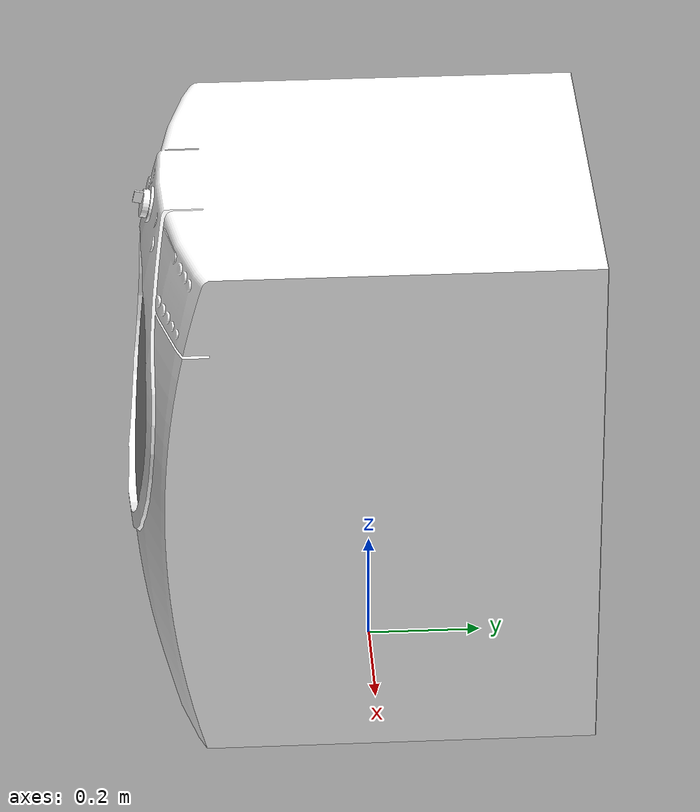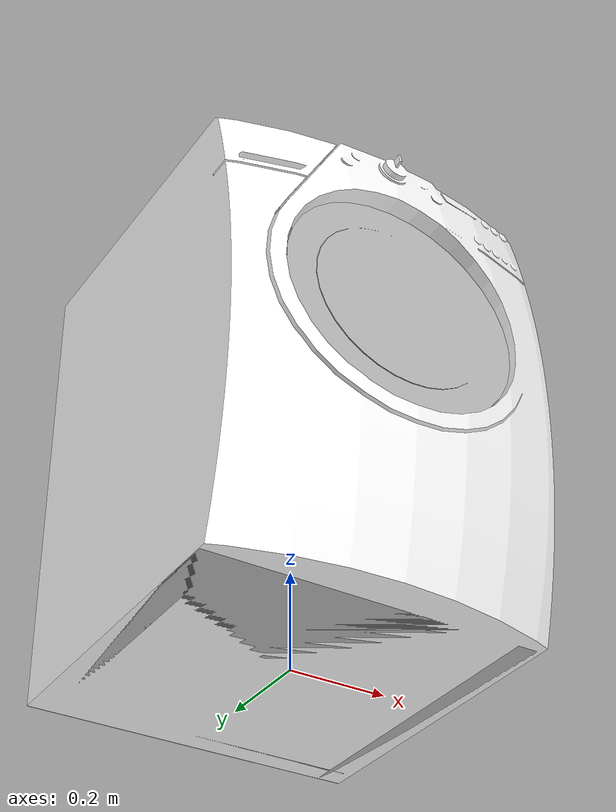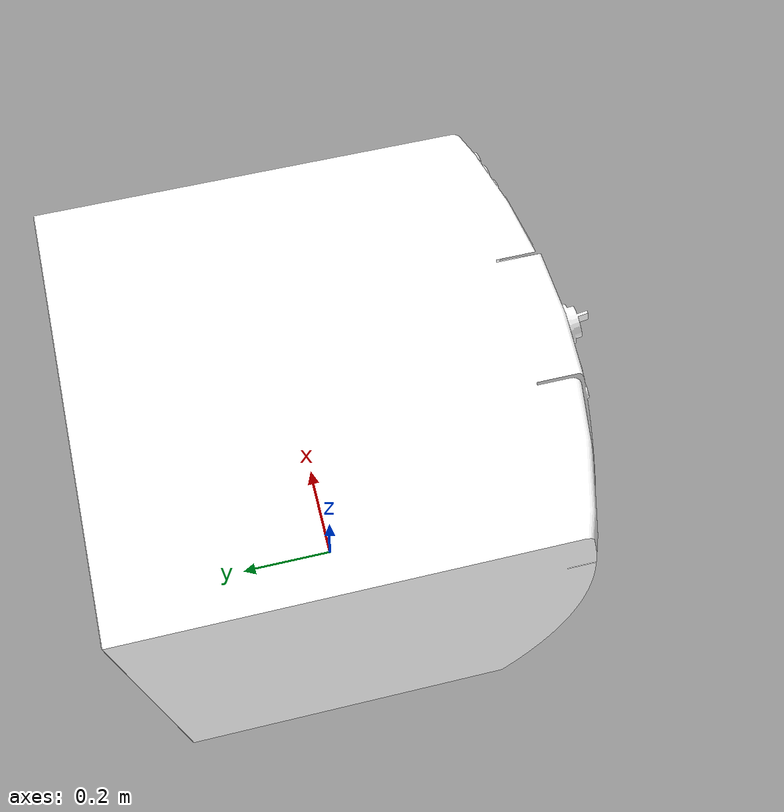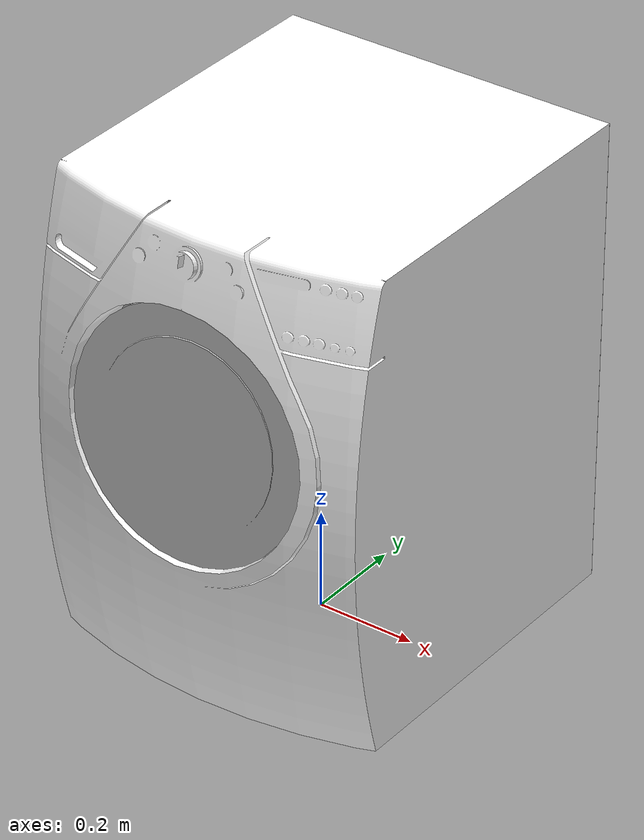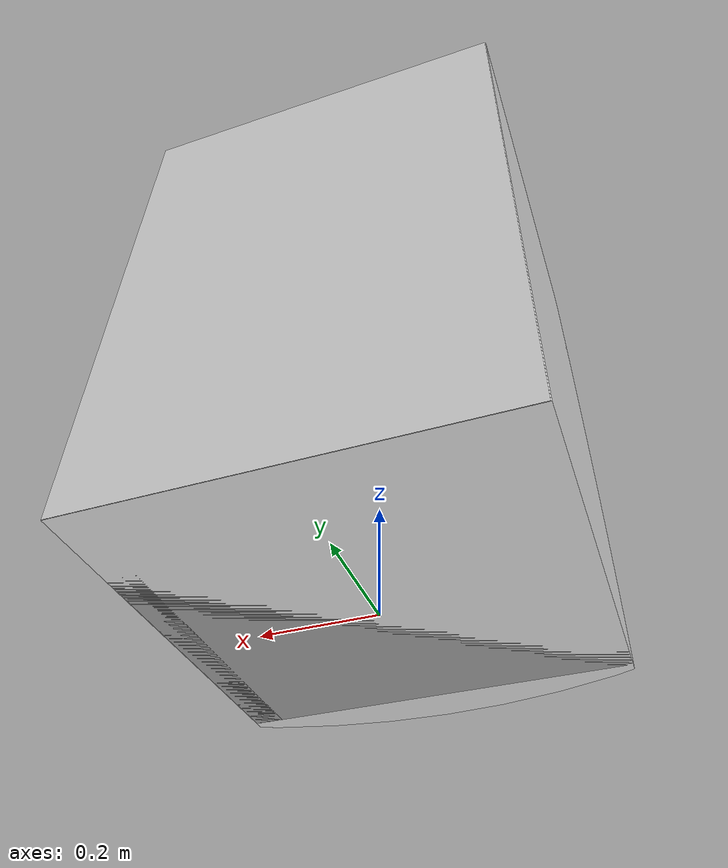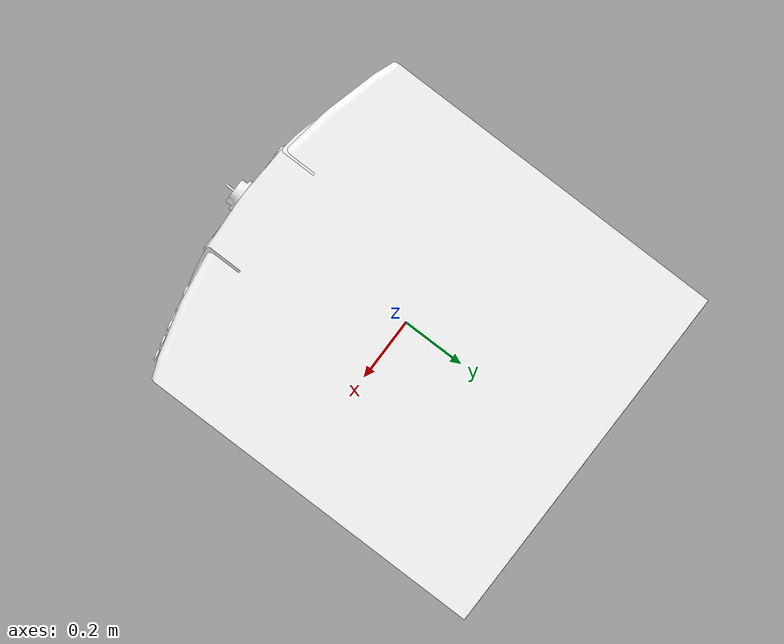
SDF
<?xml version="1.0"?>
<sdf version="1.4">
  <model name="washmachine">
    <static>false</static>

    <link name="body">
      <inertial>
        <mass>40</mass>
        <inertia>
          <ixx>0.58</ixx>
          <ixy>0</ixy>
          <ixz>0</ixz>
          <iyy>0.58</iyy>
          <iyz>0</iyz>
          <izz>0.19</izz>
        </inertia>
      </inertial>

      <visual name="visual">
<pose>0.002 0.005 0 0 0 0</pose>
        <geometry>
          <mesh>
            <uri>model://washmachine/meshes/washmachine_body.dae</uri>

          </mesh>
        </geometry>

      </visual>

      <collision name="body_1">
<pose>0 0 0.100 0 0 0</pose>
        <geometry>
<box><size>0.6858474 0.757  0.20</size></box>
        </geometry>

      </collision>
      <visual name="body_bottem">
<pose>0 0.0455 0.075 0 0 0</pose>
        <geometry>
<box><size>0.684 0.6645  0.15</size></box>
        </geometry>

      </visual>

      <visual name="body_2">
<pose>0.317 0.0455 0.473385 0 0 0</pose>
        <geometry>
<box><size>0.05 0.6645  0.94677</size></box>
        </geometry>

      </visual>

      <visual name="body_3">
<pose>-0.317 0.0455 0.473385 0 0 0</pose>
        <geometry>
<box><size>0.05 0.6645 0.94677</size></box>
        </geometry>

      </visual>

      <collision name="body_4">
<pose>0.317 0.0455 0.473385 0 0 0</pose>
        <geometry>
<box><size>0.05 0.6645  0.94677</size></box>
        </geometry>

      </collision>

      <collision name="body_5">
<pose>-0.317 0.0455 0.473385 0 0 0</pose>
        <geometry>
<box><size>0.05 0.6645 0.94677</size></box>
        </geometry>

      </collision>

      <collision name="body_6">
<pose>0 0.354 0.473385 0 0 0</pose>
        <geometry>
<box><size>0.684 0.05 0.94677</size></box>
        </geometry>

      </collision>

      <visual name="body_back">
<pose>0 0.354 0.473385 0 0 0</pose>
        <geometry>
<box><size>0.684 0.048 0.94677</size></box>
        </geometry>

      </visual>

      <visual name="body_7">
<pose>0 0.0455 0.8671641 0 0 0</pose>
        <geometry>
<box><size>0.684 0.6645 0.158</size></box>
        </geometry>

      </visual>

      <collision name="body_8">
<pose>0 0.0455 0.8671641 0 0 0</pose>
        <geometry>
<box><size>0.684 0.6645 0.158</size></box>
        </geometry>

      </collision>
    </link>

<link name="door">
      <inertial>
        <mass>0.4</mass>
        <inertia>
          <ixx>1</ixx>
          <ixy>0</ixy>
          <ixz>0</ixz>
          <iyy>1</iyy>
          <iyz>0</iyz>
          <izz>1</izz>
        </inertia>
      </inertial>

<pose>0 -0.40 0.32 -0.1 0 0</pose>
      <visual name="door_1">
<pose>0 0 0 0 0 0</pose>
        <geometry>
          <mesh>
            <uri>model://washmachine/meshes/washmachine_door.dae</uri>
<scale>1 0.6 1</scale>
          </mesh>
        </geometry>

      </visual>

      <collision name="door_2">
<pose>0 0 0.2435 1.5708 0 0</pose>
        <geometry>
            <cylinder>
              <radius>.2435</radius>
              <length>.025</length>
            </cylinder>
        </geometry>

      </collision>
</link>

      <joint type="revolute" name="door_joint">
        <pose>-0.26 0 0 0 0 0</pose>
        <child>door</child>
        <parent>body</parent>
        <axis>
    		<limit>
      			<upper>0.0</upper>
      			<lower>-2</lower>
    		</limit>
          <xyz>0 0.1 1</xyz>
          <dynamics>
            <damping>10</damping>
          </dynamics>
        </axis>
      </joint>

  </model>
</sdf>
